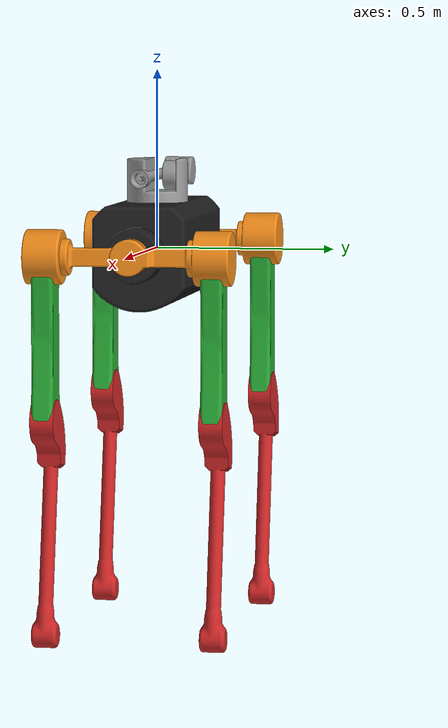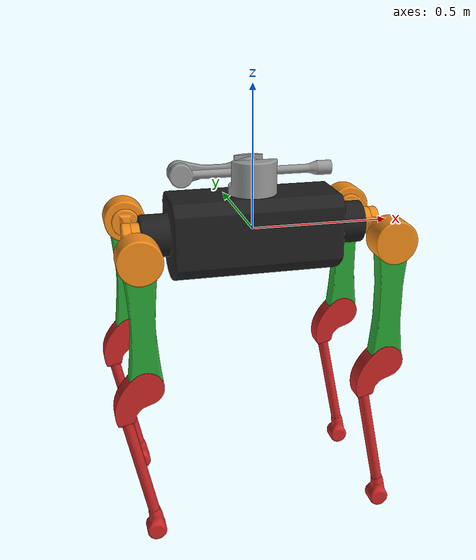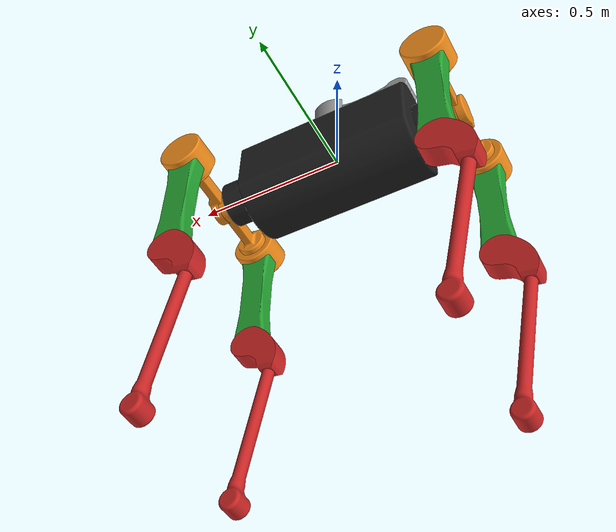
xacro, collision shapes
<?xml version="1.0"?>
<robot xmlns:xacro="http://www.ros.org/wiki/xacro" name="argos">

    <xacro:property name="pi" value="3.14159265358979" />
    <xacro:include filename="$(find mini_project)/robots/robot_properties.urdf.xacro"/>

    <link name="base_link">
        <visual>
            <geometry>
                <mesh filename="${path_to_base}" scale = "0.001 0.001 0.001"/>
            </geometry>
            <origin xyz="0.0 0.0 0.0" rpy="${pi/2} 0 0"/>
        </visual>
        <collision>
            <geometry>
                <mesh filename="${path_to_base}" scale = "0.001 0.001 0.001"/>
            </geometry>
            <origin xyz="0.0 0.0 0.0" rpy="${pi/2} 0 0"/>
        </collision>
    </link>

    <link name="base_inertia">
        <inertial>
            <origin xyz="${body_center_of_mass}"/>
            <mass value="${body_mass}" />
            <inertia ixx="${ixx_body}" ixy="${ixy_body}" ixz="${ixz_body}"
                     iyy="${iyy_body}" iyz="${iyz_body}"
                     izz="${izz_body}" />
        </inertial>
    </link>
    <joint name="base_link_to_base_inertia" type="fixed">
        <parent link="base_link"/>
        <child link="base_inertia"/>
        <origin rpy="0 0 0" xyz="0 0 0"/>
    </joint>

    <xacro:include filename="$(find mini_project)/robots/legs.urdf.xacro"/>

    <xacro:include filename="$(find mini_project)/robots/accessories_depth.urdf.xacro"/>

    <xacro:accessories base_name = "base_link"/>

    <gazebo reference="base_link">
        <material>Gazebo/FlatBlack</material>
    </gazebo>

    <xacro:argos_leg leg="LF"/>
    <xacro:argos_leg leg="RF"/>
    <xacro:argos_leg leg="LH"/>
    <xacro:argos_leg leg="RH"/>

    <xacro:include filename="$(find mini_project)/robots/manipulator.urdf.xacro"/>

    <xacro:manipulator base_name="base_link"/>

    <gazebo>
      <plugin name="p3d_base_controller" filename="libgazebo_ros_p3d.so">
            <alwaysOn>true</alwaysOn>
            <updateRate>50.0</updateRate>
            <bodyName>base_link</bodyName>
            <topicName>odom/ground_truth</topicName>
            <gaussianNoise>0.001</gaussianNoise>
            <frameName>world</frameName>
            <xyzOffsets>0 0 0</xyzOffsets>
            <rpyOffsets>0 0 0</rpyOffsets>
        </plugin>
    </gazebo>

    <gazebo>
      <plugin filename="libgazebo_ros_control.so" name="gazebo_ros_control">
        <legacyModeNS>true</legacyModeNS>
      </plugin>
   </gazebo>

</robot>

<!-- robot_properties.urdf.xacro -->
<robot xmlns:xacro="http://www.ros.org/wiki/xacro">
    <xacro:property name="path_to_base" value = "package://mini_project/meshes/body.dae"/>
    <xacro:property name="path_to_leg_roll" value = "package://mini_project/meshes/thigh.dae"/>
    <xacro:property name="path_to_upper_leg" value = "package://mini_project/meshes/upper_leg.dae"/>
    <xacro:property name="path_to_lower_leg" value = "package://mini_project/meshes/lower_leg.dae"/>
    <xacro:property name="path_to_manipulator_base" value = "package://mini_project/meshes/manipulator_joint.dae"/>
    <xacro:property name="path_to_manipulator_segment_1" value = "package://mini_project/meshes/manipulator_segment_1.dae"/>
    <xacro:property name="path_to_manipulator_segment_2" value = "package://mini_project/meshes/manipulator_segment_2.dae"/>

    <xacro:property name="ixx_body" value = "0.47331170488628769"/>
    <xacro:property name="ixy_body" value = "-0.00000001187694189"/>
    <xacro:property name="ixz_body" value = "0.00000000000000003"/>
    <xacro:property name="iyy_body" value = "1.92964600184763336"/>
    <xacro:property name="iyz_body" value = "-0.00000000000000002"/>
    <xacro:property name="izz_body" value = "1.88984590052932334"/>
    <xacro:property name="body_mass" value = "44.88560357849"/>
    <xacro:property name="body_center_of_mass" value = "0 0 -0.00722624877"/>

    <xacro:property name="ixx_leg_roll" value = "0.01771591024567954"/>
    <xacro:property name="ixy_leg_roll" value = "-0.00071891013320325"/>
    <xacro:property name="ixz_leg_roll" value = "0.00000000005150730"/>
    <xacro:property name="iyy_leg_roll" value = "0.00540298667216859"/>
    <xacro:property name="iyz_leg_roll" value = "0.00000000016635487"/>
    <xacro:property name="izz_leg_roll" value = "0.01761332943089841"/>
    <xacro:property name="leg_roll_mass" value = "2.33840380361"/>
    <xacro:property name="leg_roll_center_x" value = "0.00160346990"/>
    <xacro:property name="leg_roll_center_y" value = "0.19560047521"/>
    <xacro:property name="leg_roll_center_z" value = "0.0"/>

    <xacro:property name="ixx_thigh" value = "0.07057863001314926"/>
    <xacro:property name="ixy_thigh" value = "0.00000000027932686"/>
    <xacro:property name="ixz_thigh" value = "-0.00000000037129365"/>
    <xacro:property name="iyy_thigh" value = "0.07214686311642775"/>
    <xacro:property name="iyz_thigh" value = "-0.00000000697351520"/>
    <xacro:property name="izz_thigh" value = "0.00313292947996250"/>
    <xacro:property name="thigh_mass" value = "2.90604711841"/>
    <xacro:property name="thigh_center_x" value = "-0.00000012465"/>
    <xacro:property name="thigh_center_y" value = "0.00000008927"/>
    <xacro:property name="thigh_center_z" value = "-0.19777343169"/>
    <xacro:property name="thigh_center_of_mass" value = "${thigh_center_x} ${thigh_center_y} ${thigh_center_z}"/>

    <xacro:property name="ixx_lower_leg" value = "0.09079395557915390"/>
    <xacro:property name="ixy_lower_leg" value = "-0.00000001255242645"/>
    <xacro:property name="ixz_lower_leg" value = "0.01304754928405628"/>
    <xacro:property name="iyy_lower_leg" value = "0.09510714803975490"/>
    <xacro:property name="iyz_lower_leg" value = "-0.00000000639667712"/>
    <xacro:property name="izz_lower_leg" value = "0.00552232540194871"/>
    <xacro:property name="lower_leg_mass" value = "1.81736381294"/>
    <xacro:property name="lower_leg_center_x" value = "-0.05466888228"/>
    <xacro:property name="lower_leg_center_y" value = "0.00000002713"/>
    <xacro:property name="lower_leg_center_z" value = "-0.15386388146"/>
    <xacro:property name="lower_leg_center_of_mass" value = "${lower_leg_center_x} ${lower_leg_center_y} ${lower_leg_center_z}"/>

    <xacro:property name="ixx_man_base" value = "0.00592368152307"/>
    <xacro:property name="ixy_man_base" value = "0.0"/>
    <xacro:property name="ixz_man_base" value = "0.0"/>
    <xacro:property name="iyy_man_base" value = "0.00455222665474"/>
    <xacro:property name="iyz_man_base" value = "0.0"/>
    <xacro:property name="izz_man_base" value = "0.00630165344962"/>
    <xacro:property name="man_base_mass" value = "1.63291158"/>
    <xacro:property name="man_base_center" value = "0.0001195 -0.01132600777 0.04996291284 "/>

    <xacro:property name="ixx_man_seg_1" value = "0.00029149081721"/>
    <xacro:property name="ixy_man_seg_1" value = "0.0"/>
    <xacro:property name="ixz_man_seg_1" value = "0.0"/>
    <xacro:property name="iyy_man_seg_1" value = "0.00745356022911"/>
    <xacro:property name="iyz_man_seg_1" value = "0.0"/>
    <xacro:property name="izz_man_seg_1" value = "0.00730622307390"/>
    <xacro:property name="man_seg_1_mass" value = "0.65721313"/>
    <xacro:property name="man_seg_1_center" value = "-0.12499144985 0.00000184653 0.0"/>

    <xacro:property name="ixx_man_seg_2" value = "0.00016867187941"/>
    <xacro:property name="ixy_man_seg_2" value = "0.0"/>
    <xacro:property name="ixz_man_seg_2" value = "0.0"/>
    <xacro:property name="iyy_man_seg_2" value = "0.02041441059327"/>
    <xacro:property name="iyz_man_seg_2" value = "0.0"/>
    <xacro:property name="izz_man_seg_2" value = "0.02036185070001"/>
    <xacro:property name="man_seg_2_mass" value = "0.45716422"/>
    <xacro:property name="man_seg_2_center" value = "0.19438946797 0.0 0.00000001267"/>

</robot>

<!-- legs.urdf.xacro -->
<robot xmlns:xacro="http://www.ros.org/wiki/xacro">
    <xacro:macro name="argos_leg" params="leg ">

        <xacro:if value="${leg == 'RF'}">
            <xacro:property name="side" value = "-1"/>
            <xacro:property name="position_hip" value = "0.43"/>
        </xacro:if>

        <xacro:if value="${leg == 'LF'}">
            <xacro:property name="side" value = "1"/>
            <xacro:property name="position_hip" value = "0.43"/>
        </xacro:if>

        <xacro:if value="${leg == 'RH'}">
            <xacro:property name="side" value = "-1"/>
            <xacro:property name="position_hip" value = "-0.43"/>
        </xacro:if>

        <xacro:if value="${leg == 'LH'}">
            <xacro:property name="side" value = "1"/>
            <xacro:property name="position_hip" value = "-0.43"/>
        </xacro:if>

        <xacro:property name="leg_roll_center_of_mass" value = "${side*leg_roll_center_x} ${side*leg_roll_center_y} ${leg_roll_center_z}"/>
        <xacro:property name="toeOffset" value="0.0106"/>
        <xacro:property name="toeStiffness" value="30000.0"/>
        <xacro:property name="toeDamping" value="1000.0"/>
        <xacro:property name="toeFriction" value="1.0"/>
        <xacro:property name="toeLateralFriction" value="1.0"/>

        <link name="${leg}_leg_roll">
            <inertial>
                <origin xyz = "${leg_roll_center_of_mass}"  rpy="0 0 0"/>
                <mass value="${leg_roll_mass}" />
                <inertia ixx="${ixx_leg_roll}" ixy="${ixy_leg_roll}" ixz="${ixz_leg_roll}"
                     iyy="${iyy_leg_roll}" iyz="${iyz_leg_roll}"
                     izz="${izz_leg_roll}" />
            </inertial>
            <visual>
                <geometry>
                    <mesh filename="${path_to_leg_roll}" scale = "0.001 0.001 0.001"/>
                </geometry>
                <origin xyz="0.0 0.0 0.0" rpy="${pi/2} 0.0 ${pi*side/2}" />
            </visual>
            <collision>
                <geometry>
                    <mesh filename="${path_to_leg_roll}" scale = "0.001 0.001 0.001"/>
                </geometry>
                <origin xyz="0.0 0.0 0.0" rpy="${pi/2} 0.0 ${pi*side/2}"/>
            </collision>
        </link>

        <gazebo reference="${leg}_leg_roll">
            <material>Gazebo/Orange</material>
        </gazebo>

        <link name="${leg}_upper_leg">
            <inertial>
                <origin xyz = "${thigh_center_of_mass}"  rpy="${pi/2} 0 ${pi/2}"/>
                <mass value="${thigh_mass}" />
                <inertia ixx="${ixx_thigh}" ixy="${side*ixy_thigh}" ixz="${ixz_thigh}"
                     iyy="${iyy_thigh}" iyz="${side*iyz_thigh}"
                     izz="${izz_thigh}" />
            </inertial>
            <visual>
                <geometry>
                    <mesh filename="${path_to_upper_leg}" scale = "0.001 0.001 0.001"/>
                </geometry>
                <origin xyz="0.0 0.0 0.0" rpy="${pi/2} ${-pi/2} 0"/>
            </visual>
            <collision>
                <geometry>
                    <mesh filename="${path_to_upper_leg}" scale = "0.001 0.001 0.001"/>
                </geometry>
                <origin xyz="0.0 0.0 0.0" rpy="${pi/2} ${-pi/2} 0"/>
            </collision>
        </link>

        <gazebo reference="${leg}_upper_leg">
            <material>Gazebo/Green</material>
        </gazebo>

        <link name="${leg}_lower_leg">
            <inertial>
                <origin xyz = "${lower_leg_center_of_mass}" rpy="0 -0.2 0"/>
                <mass value="${lower_leg_mass}" />
                <inertia ixx="${ixx_lower_leg}" ixy="${ixy_lower_leg}" ixz="${ixz_lower_leg}"
                     iyy="${iyy_lower_leg}" iyz="${iyz_lower_leg}"
                     izz="${izz_lower_leg}" />
            </inertial>
            <visual>
                <geometry>
                    <mesh filename="${path_to_lower_leg}" scale = "0.001 0.001 0.001"/>
                </geometry>
                <origin xyz="0 0.0 0" rpy="${pi/2} ${pi/2-0.2} 0"/>
            </visual>
            <collision>
                <geometry>
                    <mesh filename="${path_to_lower_leg}" scale = "0.001 0.001 0.001"/>
                </geometry>
                <origin xyz="0 0.0 0" rpy="${pi/2} ${pi/2-0.2} 0"/>
            </collision>
        </link>

        <gazebo reference="${leg}_lower_leg">
			<kp>100000.0</kp>
            <kd>1.0</kd>
            <mu1>1.0</mu1>
            <mu2>1.0</mu2>
            <maxVel>0.0</maxVel>
            <minDepth>0.001</minDepth>
            <material>Gazebo/Red</material>
        </gazebo>

        <link name="${leg}_foot"/>

        <joint name="${leg}_hip_joint" type="revolute">
            <parent link="base_link"/>
            <child link="${leg}_leg_roll"/>
            <axis xyz="1.0 0.0 0.0"/>
            <origin xyz="${position_hip} 0.0 0.0"/>
            <limit effort="250" lower="-${pi}" upper="${pi}" velocity="5.0" />
        </joint>

        <joint name="${leg}_upper_leg_joint" type="revolute">
            <parent link="${leg}_leg_roll"/>
            <child link="${leg}_upper_leg"/>
            <axis xyz="0.0 1.0  0.0"/>
            <origin xyz="0.0 ${side*0.233} 0.0"/>

            <limit effort="250" lower="-${pi}" upper="${pi}" velocity="5.0" />
        </joint>

        <joint name="${leg}_lower_leg_joint" type="revolute">
            <parent link="${leg}_upper_leg"/>
            <child link="${leg}_lower_leg"/>
            <axis xyz="0.0 1.0  0.0"/>
            <origin xyz="0.0 0.0 -0.45"/>
            <limit effort="250" lower="-${pi}" upper="${pi}" velocity="2.0" />
        </joint>

        <joint name="${leg}_foot_joint" type="fixed">
            <parent link="${leg}_lower_leg"/>
            <child link="${leg}_foot"/>
            <origin xyz="0.0 0.0 -0.61"/>
        </joint>

        <gazebo reference="${leg}_hip_joint">
            <provideFeedback>true</provideFeedback>
        </gazebo>

        <gazebo reference="${leg}_upper_leg_joint">
            <provideFeedback>true</provideFeedback>
        </gazebo>

        <gazebo reference="${leg}_lower_leg_joint">
            <provideFeedback>true</provideFeedback>
        </gazebo>

        <transmission name="${leg}_hip_joint_trans">
            <type>transmission_interface/SimpleTransmission</type>
            <joint name="${leg}_hip_joint">
            <hardwareInterface>hardware_interface/EffortJointInterface</hardwareInterface>
            </joint>
            <actuator name="${leg}_hip_joint_motor">
                <mechanicalReduction>1</mechanicalReduction>
            </actuator>
        </transmission>

        <transmission name="${leg}_upper_leg_joint_trans">
            <type>transmission_interface/SimpleTransmission</type>
            <joint name="${leg}_upper_leg_joint">
            <hardwareInterface>hardware_interface/EffortJointInterface</hardwareInterface>
            </joint>
            <actuator name="${leg}_upper_leg_joint_motor">
                <mechanicalReduction>1</mechanicalReduction>
            </actuator>
        </transmission>

        <transmission name="${leg}_lower_leg_joint_trans">
            <type>transmission_interface/SimpleTransmission</type>
            <joint name="${leg}_lower_leg_joint">
            <hardwareInterface>hardware_interface/EffortJointInterface</hardwareInterface>
            </joint>
            <actuator name="${leg}_lower_joint_motor">
                <mechanicalReduction>1</mechanicalReduction>
            </actuator>
        </transmission>

    </xacro:macro>
</robot>

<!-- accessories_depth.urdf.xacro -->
<robot xmlns:xacro="http://ros.org/wiki/xacro">
    <xacro:macro name="accessories" params="base_name " >

    <xacro:include filename="$(find mini_project)/robots/materials.urdf.xacro" />

    <!-- Arguments -->

    <xacro:arg name="camera_name"   default="zed2" />
    <xacro:arg name="camera_model"  default="zed2" />
    <xacro:arg name="base_frame"    default="${base_name}" />
    <xacro:arg name="cam_pos_x"     default="0.31" />
    <xacro:arg name="cam_pos_y"     default="0.0" />
    <xacro:arg name="cam_pos_z"     default="-0.14" />
    <xacro:arg name="cam_roll"      default="0.0" />
    <xacro:arg name="cam_pitch"     default="0.0" />
    <xacro:arg name="cam_yaw"       default="0.0" />

    <!-- Properties -->
    <xacro:property name="M_PI"     value="3.1415926535897931" />
    <xacro:property name="model"    value="$(arg camera_model)" />

    <xacro:if value="${model == 'zed'}">
        <xacro:property name="baseline" value="0.12" />
    </xacro:if>
    <xacro:if value="${model == 'zedm'}">
        <xacro:property name="baseline" value="0.06" />
    </xacro:if>
    <xacro:if value="${model == 'zed2'}">
        <xacro:property name="baseline" value="0.12" />
    </xacro:if>
    <xacro:if value="${model == 'zed2i'}">
        <xacro:property name="baseline" value="0.12" />
    </xacro:if>

<!-- Camera Center -->
    <joint name="camera_center_joint" type="fixed">
        <parent link="$(arg base_frame)"/>
        <child link="camera_center"/>
        <origin xyz="$(arg cam_pos_x) $(arg cam_pos_y) $(arg cam_pos_z)" rpy="$(arg cam_roll) $(arg cam_pitch) $(arg cam_yaw)" />
    </joint>

    <link name="camera_center">
        <visual>
            <origin xyz="0 0 0" rpy="0 0 0"/>
            <geometry>
                <mesh filename="package://mini_project/meshes/${model}.stl" />
            </geometry>
            <material name="${model}_mat" />
        </visual>
    </link>

<!-- Left Camera -->
    <joint name="left_camera_joint" type="fixed">
        <parent link="camera_center"/>
        <child link="left_camera_frame"/>
        <origin xyz="0 ${baseline/2} 0" rpy="0 0 0" />
    </joint>

    <link name="left_camera_frame" />

    <joint name="left_camera_optical_joint" type="fixed">
        <origin xyz="0 0 0" rpy="-${M_PI/2} 0.0 -${M_PI/2}"/>
        <parent link="left_camera_frame"/>
        <child link="left_camera_optical_frame"/>
    </joint>

    <link name="left_camera_optical_frame"/>

    <gazebo reference="left_camera_frame">

        <sensor type="depth" name="openni_camera_camera">
        <always_on>1</always_on>
        <visualize>true</visualize>
        <camera>
            <horizontal_fov>1.91986218</horizontal_fov>
            <vertical_fov>1.22173048</vertical_fov>
            <diagonal_fov>2.0943951</diagonal_fov>
            <image>
                <width>1920</width>
                <height>1080</height>
                <format>R8G8B8</format>
            </image>
            <clip>
                <near>0.1</near>
                <far>25.0</far>
            </clip>
        </camera>
        <plugin name="camera_plugin" filename="libgazebo_ros_openni_kinect.so">
            <robotNamespace>argos</robotNamespace>
            <baseline>0.2</baseline>
            <alwaysOn>true</alwaysOn>
            <updateRate>0.0</updateRate>
            <cameraName>depth_camera</cameraName>
            <imageTopicName>/depth/image_rect_color</imageTopicName>
            <cameraInfoTopicName>/argos/depth/camera_info </cameraInfoTopicName>
            <depthImageTopicName>/argos/depth/depth_registered</depthImageTopicName>
            <depthImageCameraInfoTopicName>/argos/depth/image_raw/camera_info</depthImageCameraInfoTopicName>
            <pointCloudTopicName>/argos/depth/point_cloud/cloud_registered </pointCloudTopicName>
            <frameName>left_camera_optical_frame</frameName>
            <pointCloudCutoff>0.4</pointCloudCutoff>
            <distortionK1>0</distortionK1>
            <distortionK2>0</distortionK2>
            <distortionK3>0</distortionK3>
            <distortionT1>0</distortionT1>
            <distortionT2>0</distortionT2>
            <CxPrime>0</CxPrime>
            <Cx>0</Cx>
            <Cy>0</Cy>
            <focalLength>0</focalLength>
            <hackBaseline>0</hackBaseline>
        </plugin>
        </sensor>

        <sensor type="multicamera" name="stereo_camera">
        <update_rate>30.0</update_rate>
        <camera name="left">
            <horizontal_fov>1.91986218</horizontal_fov>
            <vertical_fov>1.22173048</vertical_fov>
            <diagonal_fov>2.0943951</diagonal_fov>
            <image>
                <width>1920</width>
                <height>1080</height>
                <format>R8G8B8</format>
            </image>
            <clip>
                <near>0.02</near>
                <far>300</far>
            </clip>
            <noise>
                <type>gaussian</type>
                <mean>0.0</mean>
                <stddev>0.004</stddev>
            </noise>
        </camera>
        <camera name="right">
            <pose>0 -0.12 0 0 0 0</pose>
            <horizontal_fov>1.91986218</horizontal_fov>
            <vertical_fov>1.22173048</vertical_fov>
            <diagonal_fov>2.0943951</diagonal_fov>
            <image>
                <width>1920</width>
                <height>1080</height>
                <format>R8G8B8</format>
            </image>
            <clip>
                <near>0.02</near>
                <far>300</far>
            </clip>
            <noise>
                <type>gaussian</type>
                <mean>0.0</mean>
                <stddev>0.004</stddev>
            </noise>
        </camera>
        <plugin name="stereo_camera_controller" filename="libgazebo_ros_multicamera.so">
            <robotNamespace>argos</robotNamespace>
            <alwaysOn>true</alwaysOn>
            <updateRate>0.0</updateRate>
            <cameraName>camera</cameraName>
            <imageTopicName>image_raw</imageTopicName>
            <cameraInfoTopicName>camera_info</cameraInfoTopicName>
            <frameName>left_camera_optical_frame</frameName>
            <hackBaseline>0.12</hackBaseline>
            <distortionK1>0.0</distortionK1>
            <distortionK2>0.0</distortionK2>
            <distortionK3>0.0</distortionK3>
            <distortionT1>0.0</distortionT1>
            <distortionT2>0.0</distortionT2>
        </plugin>
        </sensor>
    </gazebo>

        <gazebo>
            <plugin name="imu_controller" filename="libhector_gazebo_ros_imu.so">
                <updateRate>50.0</updateRate>
                <bodyName>imu_link</bodyName>
                <topicName>imu/data</topicName>
                <accelDrift>0.005 0.005 0.005</accelDrift>
                <frameId>argos/base_link</frameId>
                <accelGaussianNoise>0.005 0.005 0.005</accelGaussianNoise>
                <rateDrift>0.005 0.005 0.005 </rateDrift>
                <rateGaussianNoise>0.005 0.005 0.005 </rateGaussianNoise>
                <headingDrift>0.005</headingDrift>
                <headingGaussianNoise>0.005</headingGaussianNoise>
            </plugin>
        </gazebo>

        <link name="imu_link">
            <inertial>
                <mass value="0.001"/>
                <origin xyz="0 0 0" rpy="0 0 0"/>
                <inertia ixx="1e-09" ixy="0.0" ixz="0.0" iyy="1e-09" iyz="0.0" izz="1e-09"/>
            </inertial>
        </link>
        <joint name="imu_joint" type="fixed">
            <parent link="${base_name}" />
            <child link="imu_link" />
            <origin xyz="0.31 0.0 -0.12"/>
        </joint>

    </xacro:macro>
</robot>

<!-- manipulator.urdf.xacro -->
<robot xmlns:xacro="http://www.ros.org/wiki/xacro">

    <xacro:macro name="manipulator" params="base_name">
        <link name="manipulator_base">
            <inertial>
                <origin xyz="${man_base_center}" />
                <mass value="${man_base_mass}" />
                <inertia ixx="${ixx_man_base}" ixy="${ixy_man_base}" ixz="${ixz_man_base}"
                        iyy="${iyy_man_base}" iyz="${iyz_man_base}"
                        izz="${izz_man_base}" />
            </inertial>
            <visual>
                <geometry>
                    <mesh filename="${path_to_manipulator_base}" scale = "0.001 0.001 0.001"/>
                </geometry>
            </visual>
            <collision>
                <geometry>
                    <mesh filename="${path_to_manipulator_base}" scale = "0.001 0.001 0.001"/>
                </geometry>
            </collision>
        </link>

        <link name="manipulator_segment_1">
            <inertial>
                <origin xyz="${man_seg_1_center}" rpy="0 0.0 0"/>
                <mass value="${man_seg_1_mass}" />
                <inertia ixx="${ixx_man_seg_1}" ixy="${ixy_man_seg_1}" ixz="${ixz_man_seg_1}"
                        iyy="${iyy_man_seg_1}" iyz="${iyz_man_seg_1}"
                        izz="${izz_man_seg_1}" />
            </inertial>
            <visual>
                <geometry>
                    <mesh filename="${path_to_manipulator_segment_1}" scale = "0.001 0.001 0.001"/>
                </geometry>
                <origin xyz="0.0 0.0 0.0" rpy="${pi/2} 0.0 ${pi}"/>
            </visual>
            <collision>
                <geometry>
                    <mesh filename="${path_to_manipulator_segment_1}" scale = "0.001 0.001 0.001"/>
                </geometry>
                <origin xyz="0.0 0.0 0.0" rpy="${pi/2} 0.0 ${pi}"/>
            </collision>
        </link>

        <link name="manipulator_segment_2">
            <inertial>
                <origin xyz="${man_seg_2_center}" rpy="0 0 0.0"/>
                <mass value="${man_seg_2_mass}" />
                <inertia ixx="${ixx_man_seg_2}" ixy="${ixy_man_seg_2}" ixz="${ixz_man_seg_2}"
                        iyy="${iyy_man_seg_2}" iyz="${iyz_man_seg_2}"
                        izz="${izz_man_seg_2}" />
            </inertial>
            <visual>
                <geometry>
                    <mesh filename="${path_to_manipulator_segment_2}" scale = "0.001 0.001 0.001"/>
                </geometry>
                <origin xyz="0.0 0.0 0.0" rpy="${pi/2} ${pi} 0.0"/>
            </visual>
            <collision>
                <geometry>
                    <mesh filename="${path_to_manipulator_segment_2}" scale = "0.001 0.001 0.001"/>
                </geometry>
                <origin xyz="0.0 0.0 0.0" rpy="${pi/2} ${pi} 0.0"/>
            </collision>
        </link>

        <joint name="${base_name}_to_manipulator_base" type="fixed">
            <parent link="${base_name}"/>
            <child link="manipulator_base"/>
            <origin xyz="0.0 0.0 0.13"/>
        </joint>

        <joint name="manipulator_base_to_manipulator_segment_1" type="fixed">
            <parent link="manipulator_base"/>
            <child link="manipulator_segment_1"/>
            <origin xyz="0.0 0.04 0.075" rpy="0 0 0"/>
        </joint>

        <joint name="manipulator_segment_1_to_manipulator_segment_2" type="fixed">
            <parent link="manipulator_segment_1"/>
            <child link="manipulator_segment_2"/>
            <origin xyz="-0.25 -0.04 0.0" rpy="0.0 0.0 0.0"/>
        </joint>
    </xacro:macro>

</robot>
